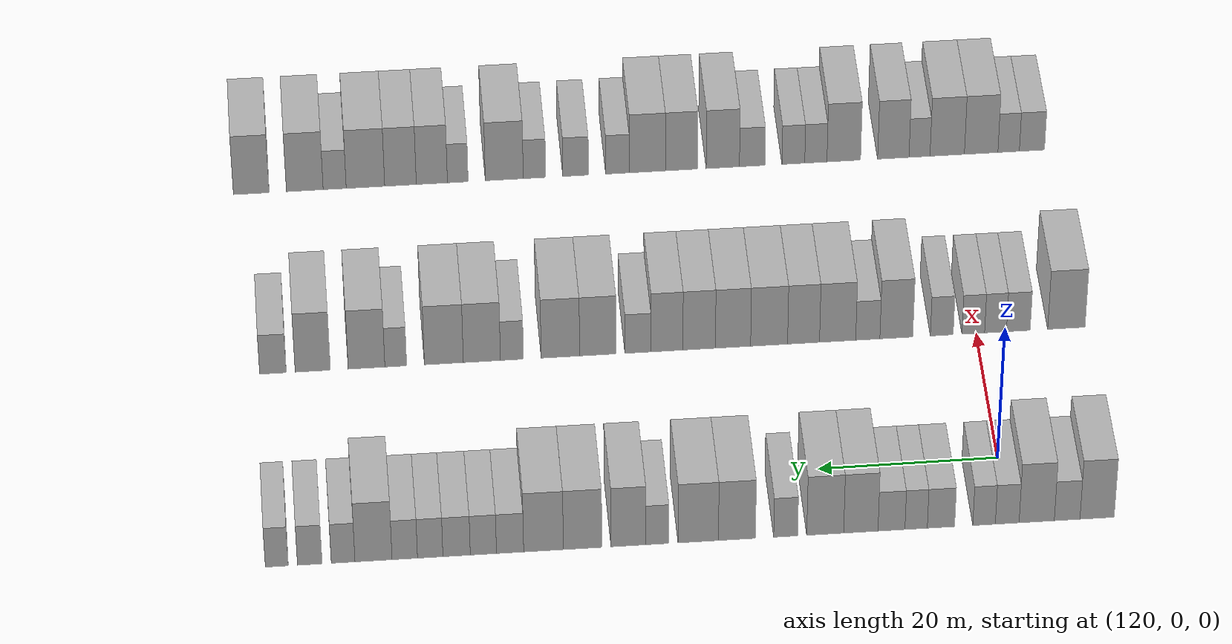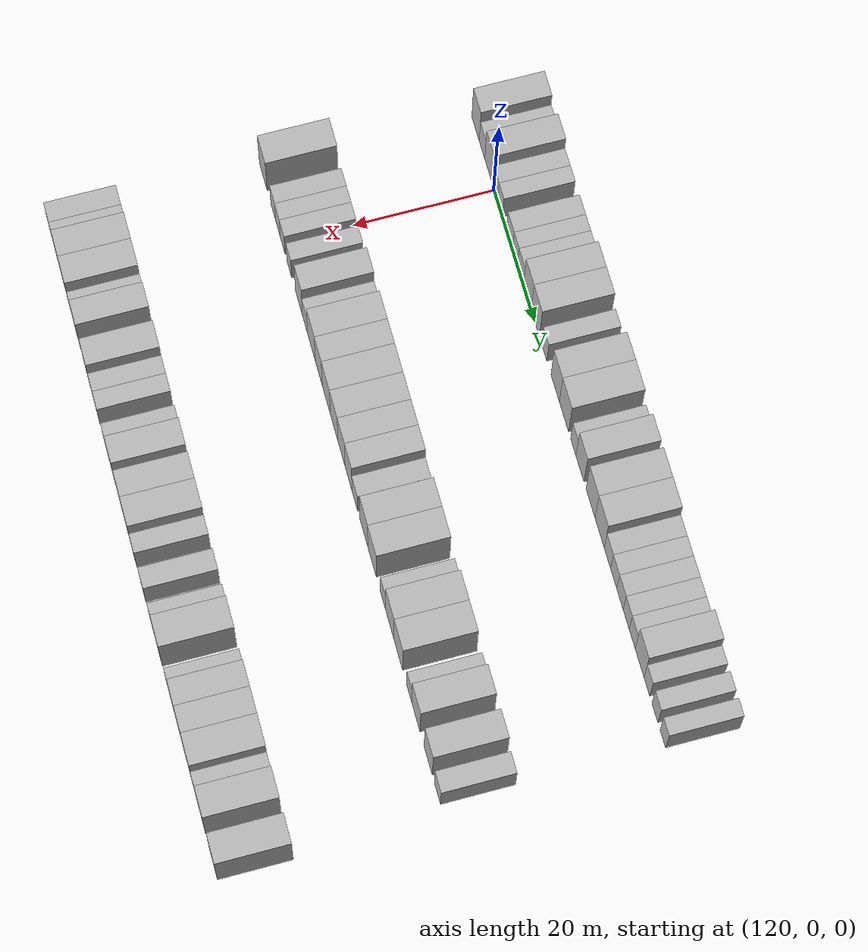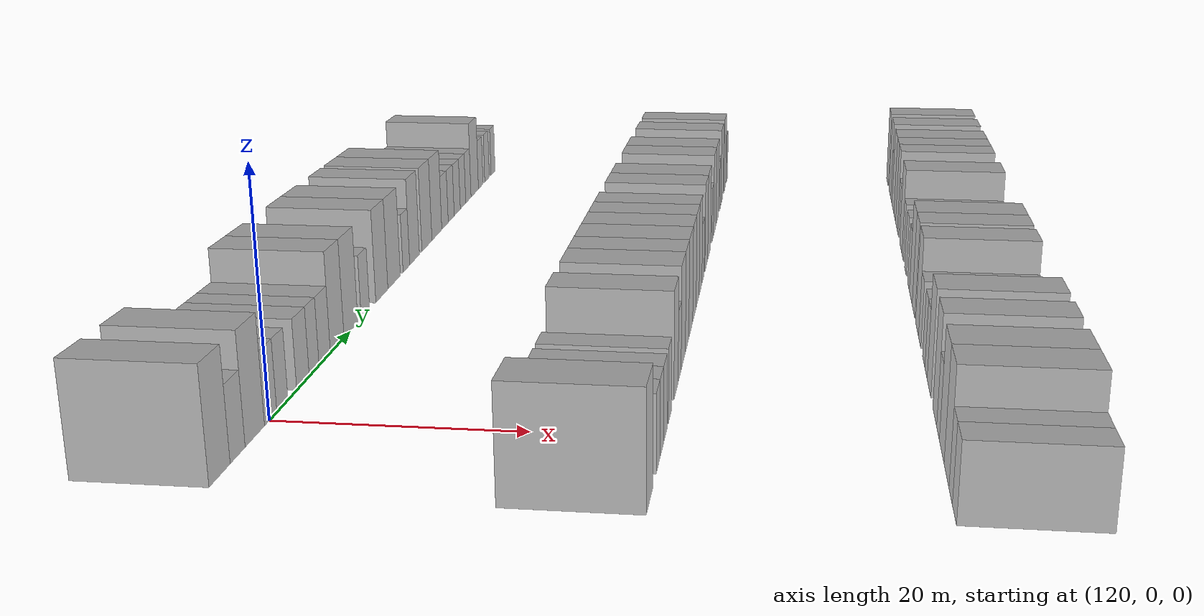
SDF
<sdf version="1.6">
 <world name="default">
  <model name="building_800">
   <static>1</static>
   <pose>115.0000 -9.6204 0 0.000000 0.000000 0.000000</pose>
   <link name="link">
    <pose>0 0 4.50 0 0 0</pose>
    <collision name="collision"><geometry><box><size>10.0000 3.7652 9.0000</size></box></geometry></collision>
    <visual name="visual">
     <cast_shadows>0</cast_shadows>
     <geometry><box><size>10.0000 3.7652 9.0000</size></box></geometry>
     <material>
      <script>
       <uri>model://HANNAS_wall/materials/scripts</uri>
       <uri>model://HANNAS_wall/materials/textures</uri>
       <name>vrc/HANNAS_wall</name>
      </script>
     </material>
    </visual>
   </link>
  </model>
  <model name="building_801">
   <static>1</static>
   <pose>115.0000 -6.3253 0 0.000000 0.000000 0.000000</pose>
   <link name="link">
    <pose>0 0 3.00 0 0 0</pose>
    <collision name="collision"><geometry><box><size>10.0000 2.8250 6.0000</size></box></geometry></collision>
    <visual name="visual">
     <cast_shadows>0</cast_shadows>
     <geometry><box><size>10.0000 2.8250 6.0000</size></box></geometry>
     <material>
      <script>
       <uri>model://HANNAS_wall/materials/scripts</uri>
       <uri>model://HANNAS_wall/materials/textures</uri>
       <name>vrc/HANNAS_wall</name>
      </script>
     </material>
    </visual>
   </link>
  </model>
  <model name="building_802">
   <static>1</static>
   <pose>115.0000 -2.9754 0 0.000000 0.000000 0.000000</pose>
   <link name="link">
    <pose>0 0 4.50 0 0 0</pose>
    <collision name="collision"><geometry><box><size>10.0000 3.8748 9.0000</size></box></geometry></collision>
    <visual name="visual">
     <cast_shadows>0</cast_shadows>
     <geometry><box><size>10.0000 3.8748 9.0000</size></box></geometry>
     <material>
      <script>
       <uri>model://HANNAS_wall/materials/scripts</uri>
       <uri>model://HANNAS_wall/materials/textures</uri>
       <name>vrc/HANNAS_wall</name>
      </script>
     </material>
    </visual>
   </link>
  </model>
  <model name="building_803">
   <static>1</static>
   <pose>115.0000 0.2673 0 0.000000 0.000000 0.000000</pose>
   <link name="link">
    <pose>0 0 3.00 0 0 0</pose>
    <collision name="collision"><geometry><box><size>10.0000 2.6106 6.0000</size></box></geometry></collision>
    <visual name="visual">
     <cast_shadows>0</cast_shadows>
     <geometry><box><size>10.0000 2.6106 6.0000</size></box></geometry>
     <material>
      <script>
       <uri>model://HANNAS_wall/materials/scripts</uri>
       <uri>model://HANNAS_wall/materials/textures</uri>
       <name>vrc/HANNAS_wall</name>
      </script>
     </material>
    </visual>
   </link>
  </model>
  <model name="building_804">
   <static>1</static>
   <pose>115.0000 2.8122 0 0.000000 0.000000 0.000000</pose>
   <link name="link">
    <pose>0 0 3.00 0 0 0</pose>
    <collision name="collision"><geometry><box><size>10.0000 2.4792 6.0000</size></box></geometry></collision>
    <visual name="visual">
     <cast_shadows>0</cast_shadows>
     <geometry><box><size>10.0000 2.4792 6.0000</size></box></geometry>
     <material>
      <script>
       <uri>model://HANNAS_wall/materials/scripts</uri>
       <uri>model://HANNAS_wall/materials/textures</uri>
       <name>vrc/HANNAS_wall</name>
      </script>
     </material>
    </visual>
   </link>
  </model>
  <model name="building_805">
   <static>1</static>
   <pose>115.0000 7.5514 0 0.000000 0.000000 0.000000</pose>
   <link name="link">
    <pose>0 0 3.00 0 0 0</pose>
    <collision name="collision"><geometry><box><size>10.0000 2.9992 6.0000</size></box></geometry></collision>
    <visual name="visual">
     <cast_shadows>0</cast_shadows>
     <geometry><box><size>10.0000 2.9992 6.0000</size></box></geometry>
     <material>
      <script>
       <uri>model://HANNAS_wall/materials/scripts</uri>
       <uri>model://HANNAS_wall/materials/textures</uri>
       <name>vrc/HANNAS_wall</name>
      </script>
     </material>
    </visual>
   </link>
  </model>
  <model name="building_806">
   <static>1</static>
   <pose>115.0000 10.2783 0 0.000000 0.000000 0.000000</pose>
   <link name="link">
    <pose>0 0 3.00 0 0 0</pose>
    <collision name="collision"><geometry><box><size>10.0000 2.4547 6.0000</size></box></geometry></collision>
    <visual name="visual">
     <cast_shadows>0</cast_shadows>
     <geometry><box><size>10.0000 2.4547 6.0000</size></box></geometry>
     <material>
      <script>
       <uri>model://HANNAS_wall/materials/scripts</uri>
       <uri>model://HANNAS_wall/materials/textures</uri>
       <name>vrc/HANNAS_wall</name>
      </script>
     </material>
    </visual>
   </link>
  </model>
  <model name="building_807">
   <static>1</static>
   <pose>115.0000 12.9824 0 0.000000 0.000000 0.000000</pose>
   <link name="link">
    <pose>0 0 3.00 0 0 0</pose>
    <collision name="collision"><geometry><box><size>10.0000 2.9535 6.0000</size></box></geometry></collision>
    <visual name="visual">
     <cast_shadows>0</cast_shadows>
     <geometry><box><size>10.0000 2.9535 6.0000</size></box></geometry>
     <material>
      <script>
       <uri>model://HANNAS_wall/materials/scripts</uri>
       <uri>model://HANNAS_wall/materials/textures</uri>
       <name>vrc/HANNAS_wall</name>
      </script>
     </material>
    </visual>
   </link>
  </model>
  <model name="building_808">
   <static>1</static>
   <pose>115.0000 16.3443 0 0.000000 0.000000 0.000000</pose>
   <link name="link">
    <pose>0 0 4.50 0 0 0</pose>
    <collision name="collision"><geometry><box><size>10.0000 3.7703 9.0000</size></box></geometry></collision>
    <visual name="visual">
     <cast_shadows>0</cast_shadows>
     <geometry><box><size>10.0000 3.7703 9.0000</size></box></geometry>
     <material>
      <script>
       <uri>model://HANNAS_wall/materials/scripts</uri>
       <uri>model://HANNAS_wall/materials/textures</uri>
       <name>vrc/HANNAS_wall</name>
      </script>
     </material>
    </visual>
   </link>
  </model>
  <model name="building_809">
   <static>1</static>
   <pose>115.0000 20.2515 0 0.000000 0.000000 0.000000</pose>
   <link name="link">
    <pose>0 0 4.50 0 0 0</pose>
    <collision name="collision"><geometry><box><size>10.0000 4.0441 9.0000</size></box></geometry></collision>
    <visual name="visual">
     <cast_shadows>0</cast_shadows>
     <geometry><box><size>10.0000 4.0441 9.0000</size></box></geometry>
     <material>
      <script>
       <uri>model://HANNAS_wall/materials/scripts</uri>
       <uri>model://HANNAS_wall/materials/textures</uri>
       <name>vrc/HANNAS_wall</name>
      </script>
     </material>
    </visual>
   </link>
  </model>
  <model name="building_810">
   <static>1</static>
   <pose>115.0000 24.5813 0 0.000000 0.000000 0.000000</pose>
   <link name="link">
    <pose>0 0 3.00 0 0 0</pose>
    <collision name="collision"><geometry><box><size>10.0000 2.6155 6.0000</size></box></geometry></collision>
    <visual name="visual">
     <cast_shadows>0</cast_shadows>
     <geometry><box><size>10.0000 2.6155 6.0000</size></box></geometry>
     <material>
      <script>
       <uri>model://HANNAS_wall/materials/scripts</uri>
       <uri>model://HANNAS_wall/materials/textures</uri>
       <name>vrc/HANNAS_wall</name>
      </script>
     </material>
    </visual>
   </link>
  </model>
  <model name="building_811">
   <static>1</static>
   <pose>115.0000 29.9097 0 0.000000 0.000000 0.000000</pose>
   <link name="link">
    <pose>0 0 4.50 0 0 0</pose>
    <collision name="collision"><geometry><box><size>10.0000 4.0414 9.0000</size></box></geometry></collision>
    <visual name="visual">
     <cast_shadows>0</cast_shadows>
     <geometry><box><size>10.0000 4.0414 9.0000</size></box></geometry>
     <material>
      <script>
       <uri>model://HANNAS_wall/materials/scripts</uri>
       <uri>model://HANNAS_wall/materials/textures</uri>
       <name>vrc/HANNAS_wall</name>
      </script>
     </material>
    </visual>
   </link>
  </model>
  <model name="building_812">
   <static>1</static>
   <pose>115.0000 34.1408 0 0.000000 0.000000 0.000000</pose>
   <link name="link">
    <pose>0 0 4.50 0 0 0</pose>
    <collision name="collision"><geometry><box><size>10.0000 4.4208 9.0000</size></box></geometry></collision>
    <visual name="visual">
     <cast_shadows>0</cast_shadows>
     <geometry><box><size>10.0000 4.4208 9.0000</size></box></geometry>
     <material>
      <script>
       <uri>model://HANNAS_wall/materials/scripts</uri>
       <uri>model://HANNAS_wall/materials/textures</uri>
       <name>vrc/HANNAS_wall</name>
      </script>
     </material>
    </visual>
   </link>
  </model>
  <model name="building_813">
   <static>1</static>
   <pose>115.0000 38.6051 0 0.000000 0.000000 0.000000</pose>
   <link name="link">
    <pose>0 0 3.00 0 0 0</pose>
    <collision name="collision"><geometry><box><size>10.0000 2.5077 6.0000</size></box></geometry></collision>
    <visual name="visual">
     <cast_shadows>0</cast_shadows>
     <geometry><box><size>10.0000 2.5077 6.0000</size></box></geometry>
     <material>
      <script>
       <uri>model://HANNAS_wall/materials/scripts</uri>
       <uri>model://HANNAS_wall/materials/textures</uri>
       <name>vrc/HANNAS_wall</name>
      </script>
     </material>
    </visual>
   </link>
  </model>
  <model name="building_814">
   <static>1</static>
   <pose>115.0000 41.7603 0 0.000000 0.000000 0.000000</pose>
   <link name="link">
    <pose>0 0 4.50 0 0 0</pose>
    <collision name="collision"><geometry><box><size>10.0000 3.8028 9.0000</size></box></geometry></collision>
    <visual name="visual">
     <cast_shadows>0</cast_shadows>
     <geometry><box><size>10.0000 3.8028 9.0000</size></box></geometry>
     <material>
      <script>
       <uri>model://HANNAS_wall/materials/scripts</uri>
       <uri>model://HANNAS_wall/materials/textures</uri>
       <name>vrc/HANNAS_wall</name>
      </script>
     </material>
    </visual>
   </link>
  </model>
  <model name="building_815">
   <static>1</static>
   <pose>115.0000 46.7596 0 0.000000 0.000000 0.000000</pose>
   <link name="link">
    <pose>0 0 4.50 0 0 0</pose>
    <collision name="collision"><geometry><box><size>10.0000 4.1958 9.0000</size></box></geometry></collision>
    <visual name="visual">
     <cast_shadows>0</cast_shadows>
     <geometry><box><size>10.0000 4.1958 9.0000</size></box></geometry>
     <material>
      <script>
       <uri>model://HANNAS_wall/materials/scripts</uri>
       <uri>model://HANNAS_wall/materials/textures</uri>
       <name>vrc/HANNAS_wall</name>
      </script>
     </material>
    </visual>
   </link>
  </model>
  <model name="building_816">
   <static>1</static>
   <pose>115.0000 51.0216 0 0.000000 0.000000 0.000000</pose>
   <link name="link">
    <pose>0 0 4.50 0 0 0</pose>
    <collision name="collision"><geometry><box><size>10.0000 4.3281 9.0000</size></box></geometry></collision>
    <visual name="visual">
     <cast_shadows>0</cast_shadows>
     <geometry><box><size>10.0000 4.3281 9.0000</size></box></geometry>
     <material>
      <script>
       <uri>model://HANNAS_wall/materials/scripts</uri>
       <uri>model://HANNAS_wall/materials/textures</uri>
       <name>vrc/HANNAS_wall</name>
      </script>
     </material>
    </visual>
   </link>
  </model>
  <model name="building_817">
   <static>1</static>
   <pose>115.0000 54.6673 0 0.000000 0.000000 0.000000</pose>
   <link name="link">
    <pose>0 0 3.00 0 0 0</pose>
    <collision name="collision"><geometry><box><size>10.0000 2.9633 6.0000</size></box></geometry></collision>
    <visual name="visual">
     <cast_shadows>0</cast_shadows>
     <geometry><box><size>10.0000 2.9633 6.0000</size></box></geometry>
     <material>
      <script>
       <uri>model://HANNAS_wall/materials/scripts</uri>
       <uri>model://HANNAS_wall/materials/textures</uri>
       <name>vrc/HANNAS_wall</name>
      </script>
     </material>
    </visual>
   </link>
  </model>
  <model name="building_818">
   <static>1</static>
   <pose>115.0000 57.5738 0 0.000000 0.000000 0.000000</pose>
   <link name="link">
    <pose>0 0 3.00 0 0 0</pose>
    <collision name="collision"><geometry><box><size>10.0000 2.8498 6.0000</size></box></geometry></collision>
    <visual name="visual">
     <cast_shadows>0</cast_shadows>
     <geometry><box><size>10.0000 2.8498 6.0000</size></box></geometry>
     <material>
      <script>
       <uri>model://HANNAS_wall/materials/scripts</uri>
       <uri>model://HANNAS_wall/materials/textures</uri>
       <name>vrc/HANNAS_wall</name>
      </script>
     </material>
    </visual>
   </link>
  </model>
  <model name="building_819">
   <static>1</static>
   <pose>115.0000 60.4878 0 0.000000 0.000000 0.000000</pose>
   <link name="link">
    <pose>0 0 3.00 0 0 0</pose>
    <collision name="collision"><geometry><box><size>10.0000 2.9781 6.0000</size></box></geometry></collision>
    <visual name="visual">
     <cast_shadows>0</cast_shadows>
     <geometry><box><size>10.0000 2.9781 6.0000</size></box></geometry>
     <material>
      <script>
       <uri>model://HANNAS_wall/materials/scripts</uri>
       <uri>model://HANNAS_wall/materials/textures</uri>
       <name>vrc/HANNAS_wall</name>
      </script>
     </material>
    </visual>
   </link>
  </model>
  <model name="building_820">
   <static>1</static>
   <pose>115.0000 63.3587 0 0.000000 0.000000 0.000000</pose>
   <link name="link">
    <pose>0 0 3.00 0 0 0</pose>
    <collision name="collision"><geometry><box><size>10.0000 2.7637 6.0000</size></box></geometry></collision>
    <visual name="visual">
     <cast_shadows>0</cast_shadows>
     <geometry><box><size>10.0000 2.7637 6.0000</size></box></geometry>
     <material>
      <script>
       <uri>model://HANNAS_wall/materials/scripts</uri>
       <uri>model://HANNAS_wall/materials/textures</uri>
       <name>vrc/HANNAS_wall</name>
      </script>
     </material>
    </visual>
   </link>
  </model>
  <model name="building_821">
   <static>1</static>
   <pose>115.0000 66.1230 0 0.000000 0.000000 0.000000</pose>
   <link name="link">
    <pose>0 0 3.00 0 0 0</pose>
    <collision name="collision"><geometry><box><size>10.0000 2.7650 6.0000</size></box></geometry></collision>
    <visual name="visual">
     <cast_shadows>0</cast_shadows>
     <geometry><box><size>10.0000 2.7650 6.0000</size></box></geometry>
     <material>
      <script>
       <uri>model://HANNAS_wall/materials/scripts</uri>
       <uri>model://HANNAS_wall/materials/textures</uri>
       <name>vrc/HANNAS_wall</name>
      </script>
     </material>
    </visual>
   </link>
  </model>
  <model name="building_822">
   <static>1</static>
   <pose>115.0000 69.5182 0 0.000000 0.000000 0.000000</pose>
   <link name="link">
    <pose>0 0 4.50 0 0 0</pose>
    <collision name="collision"><geometry><box><size>10.0000 4.0255 9.0000</size></box></geometry></collision>
    <visual name="visual">
     <cast_shadows>0</cast_shadows>
     <geometry><box><size>10.0000 4.0255 9.0000</size></box></geometry>
     <material>
      <script>
       <uri>model://HANNAS_wall/materials/scripts</uri>
       <uri>model://HANNAS_wall/materials/textures</uri>
       <name>vrc/HANNAS_wall</name>
      </script>
     </material>
    </visual>
   </link>
  </model>
  <model name="building_823">
   <static>1</static>
   <pose>115.0000 72.8144 0 0.000000 0.000000 0.000000</pose>
   <link name="link">
    <pose>0 0 3.00 0 0 0</pose>
    <collision name="collision"><geometry><box><size>10.0000 2.5668 6.0000</size></box></geometry></collision>
    <visual name="visual">
     <cast_shadows>0</cast_shadows>
     <geometry><box><size>10.0000 2.5668 6.0000</size></box></geometry>
     <material>
      <script>
       <uri>model://HANNAS_wall/materials/scripts</uri>
       <uri>model://HANNAS_wall/materials/textures</uri>
       <name>vrc/HANNAS_wall</name>
      </script>
     </material>
    </visual>
   </link>
  </model>
  <model name="building_824">
   <static>1</static>
   <pose>115.0000 76.4316 0 0.000000 0.000000 0.000000</pose>
   <link name="link">
    <pose>0 0 3.00 0 0 0</pose>
    <collision name="collision"><geometry><box><size>10.0000 2.6676 6.0000</size></box></geometry></collision>
    <visual name="visual">
     <cast_shadows>0</cast_shadows>
     <geometry><box><size>10.0000 2.6676 6.0000</size></box></geometry>
     <material>
      <script>
       <uri>model://HANNAS_wall/materials/scripts</uri>
       <uri>model://HANNAS_wall/materials/textures</uri>
       <name>vrc/HANNAS_wall</name>
      </script>
     </material>
    </visual>
   </link>
  </model>
  <model name="building_825">
   <static>1</static>
   <pose>115.0000 80.0039 0 0.000000 0.000000 0.000000</pose>
   <link name="link">
    <pose>0 0 3.00 0 0 0</pose>
    <collision name="collision"><geometry><box><size>10.0000 2.4771 6.0000</size></box></geometry></collision>
    <visual name="visual">
     <cast_shadows>0</cast_shadows>
     <geometry><box><size>10.0000 2.4771 6.0000</size></box></geometry>
     <material>
      <script>
       <uri>model://HANNAS_wall/materials/scripts</uri>
       <uri>model://HANNAS_wall/materials/textures</uri>
       <name>vrc/HANNAS_wall</name>
      </script>
     </material>
    </visual>
   </link>
  </model>
  <model name="building_1036">
   <static>1</static>
   <pose>145.0000 -10.2157 0 0.000000 0.000000 0.000000</pose>
   <link name="link">
    <pose>0 0 4.50 0 0 0</pose>
    <collision name="collision"><geometry><box><size>10.0000 4.2425 9.0000</size></box></geometry></collision>
    <visual name="visual">
     <cast_shadows>0</cast_shadows>
     <geometry><box><size>10.0000 4.2425 9.0000</size></box></geometry>
     <material>
      <script>
       <uri>model://HANNAS_wall/materials/scripts</uri>
       <uri>model://HANNAS_wall/materials/textures</uri>
       <name>vrc/HANNAS_wall</name>
      </script>
     </material>
    </visual>
   </link>
  </model>
  <model name="building_1037">
   <static>1</static>
   <pose>145.0000 -4.7481 0 0.000000 0.000000 0.000000</pose>
   <link name="link">
    <pose>0 0 3.00 0 0 0</pose>
    <collision name="collision"><geometry><box><size>10.0000 2.6929 6.0000</size></box></geometry></collision>
    <visual name="visual">
     <cast_shadows>0</cast_shadows>
     <geometry><box><size>10.0000 2.6929 6.0000</size></box></geometry>
     <material>
      <script>
       <uri>model://HANNAS_wall/materials/scripts</uri>
       <uri>model://HANNAS_wall/materials/textures</uri>
       <name>vrc/HANNAS_wall</name>
      </script>
     </material>
    </visual>
   </link>
  </model>
  <model name="building_1038">
   <static>1</static>
   <pose>145.0000 -2.1588 0 0.000000 0.000000 0.000000</pose>
   <link name="link">
    <pose>0 0 3.00 0 0 0</pose>
    <collision name="collision"><geometry><box><size>10.0000 2.4857 6.0000</size></box></geometry></collision>
    <visual name="visual">
     <cast_shadows>0</cast_shadows>
     <geometry><box><size>10.0000 2.4857 6.0000</size></box></geometry>
     <material>
      <script>
       <uri>model://HANNAS_wall/materials/scripts</uri>
       <uri>model://HANNAS_wall/materials/textures</uri>
       <name>vrc/HANNAS_wall</name>
      </script>
     </material>
    </visual>
   </link>
  </model>
  <model name="building_1039">
   <static>1</static>
   <pose>145.0000 0.3706 0 0.000000 0.000000 0.000000</pose>
   <link name="link">
    <pose>0 0 3.00 0 0 0</pose>
    <collision name="collision"><geometry><box><size>10.0000 2.5731 6.0000</size></box></geometry></collision>
    <visual name="visual">
     <cast_shadows>0</cast_shadows>
     <geometry><box><size>10.0000 2.5731 6.0000</size></box></geometry>
     <material>
      <script>
       <uri>model://HANNAS_wall/materials/scripts</uri>
       <uri>model://HANNAS_wall/materials/textures</uri>
       <name>vrc/HANNAS_wall</name>
      </script>
     </material>
    </visual>
   </link>
  </model>
  <model name="building_1040">
   <static>1</static>
   <pose>145.0000 3.9520 0 0.000000 0.000000 0.000000</pose>
   <link name="link">
    <pose>0 0 3.00 0 0 0</pose>
    <collision name="collision"><geometry><box><size>10.0000 2.5896 6.0000</size></box></geometry></collision>
    <visual name="visual">
     <cast_shadows>0</cast_shadows>
     <geometry><box><size>10.0000 2.5896 6.0000</size></box></geometry>
     <material>
      <script>
       <uri>model://HANNAS_wall/materials/scripts</uri>
       <uri>model://HANNAS_wall/materials/textures</uri>
       <name>vrc/HANNAS_wall</name>
      </script>
     </material>
    </visual>
   </link>
  </model>
  <model name="building_1041">
   <static>1</static>
   <pose>145.0000 9.1105 0 0.000000 0.000000 0.000000</pose>
   <link name="link">
    <pose>0 0 4.50 0 0 0</pose>
    <collision name="collision"><geometry><box><size>10.0000 3.7273 9.0000</size></box></geometry></collision>
    <visual name="visual">
     <cast_shadows>0</cast_shadows>
     <geometry><box><size>10.0000 3.7273 9.0000</size></box></geometry>
     <material>
      <script>
       <uri>model://HANNAS_wall/materials/scripts</uri>
       <uri>model://HANNAS_wall/materials/textures</uri>
       <name>vrc/HANNAS_wall</name>
      </script>
     </material>
    </visual>
   </link>
  </model>
  <model name="building_1042">
   <static>1</static>
   <pose>145.0000 12.3460 0 0.000000 0.000000 0.000000</pose>
   <link name="link">
    <pose>0 0 3.00 0 0 0</pose>
    <collision name="collision"><geometry><box><size>10.0000 2.7438 6.0000</size></box></geometry></collision>
    <visual name="visual">
     <cast_shadows>0</cast_shadows>
     <geometry><box><size>10.0000 2.7438 6.0000</size></box></geometry>
     <material>
      <script>
       <uri>model://HANNAS_wall/materials/scripts</uri>
       <uri>model://HANNAS_wall/materials/textures</uri>
       <name>vrc/HANNAS_wall</name>
      </script>
     </material>
    </visual>
   </link>
  </model>
  <model name="building_1043">
   <static>1</static>
   <pose>145.0000 15.7672 0 0.000000 0.000000 0.000000</pose>
   <link name="link">
    <pose>0 0 4.50 0 0 0</pose>
    <collision name="collision"><geometry><box><size>10.0000 4.0986 9.0000</size></box></geometry></collision>
    <visual name="visual">
     <cast_shadows>0</cast_shadows>
     <geometry><box><size>10.0000 4.0986 9.0000</size></box></geometry>
     <material>
      <script>
       <uri>model://HANNAS_wall/materials/scripts</uri>
       <uri>model://HANNAS_wall/materials/textures</uri>
       <name>vrc/HANNAS_wall</name>
      </script>
     </material>
    </visual>
   </link>
  </model>
  <model name="building_1044">
   <static>1</static>
   <pose>145.0000 19.6259 0 0.000000 0.000000 0.000000</pose>
   <link name="link">
    <pose>0 0 4.50 0 0 0</pose>
    <collision name="collision"><geometry><box><size>10.0000 3.6188 9.0000</size></box></geometry></collision>
    <visual name="visual">
     <cast_shadows>0</cast_shadows>
     <geometry><box><size>10.0000 3.6188 9.0000</size></box></geometry>
     <material>
      <script>
       <uri>model://HANNAS_wall/materials/scripts</uri>
       <uri>model://HANNAS_wall/materials/textures</uri>
       <name>vrc/HANNAS_wall</name>
      </script>
     </material>
    </visual>
   </link>
  </model>
  <model name="building_1045">
   <static>1</static>
   <pose>145.0000 23.5263 0 0.000000 0.000000 0.000000</pose>
   <link name="link">
    <pose>0 0 4.50 0 0 0</pose>
    <collision name="collision"><geometry><box><size>10.0000 4.1819 9.0000</size></box></geometry></collision>
    <visual name="visual">
     <cast_shadows>0</cast_shadows>
     <geometry><box><size>10.0000 4.1819 9.0000</size></box></geometry>
     <material>
      <script>
       <uri>model://HANNAS_wall/materials/scripts</uri>
       <uri>model://HANNAS_wall/materials/textures</uri>
       <name>vrc/HANNAS_wall</name>
      </script>
     </material>
    </visual>
   </link>
  </model>
  <model name="building_1046">
   <static>1</static>
   <pose>145.0000 27.6046 0 0.000000 0.000000 0.000000</pose>
   <link name="link">
    <pose>0 0 4.50 0 0 0</pose>
    <collision name="collision"><geometry><box><size>10.0000 3.9747 9.0000</size></box></geometry></collision>
    <visual name="visual">
     <cast_shadows>0</cast_shadows>
     <geometry><box><size>10.0000 3.9747 9.0000</size></box></geometry>
     <material>
      <script>
       <uri>model://HANNAS_wall/materials/scripts</uri>
       <uri>model://HANNAS_wall/materials/textures</uri>
       <name>vrc/HANNAS_wall</name>
      </script>
     </material>
    </visual>
   </link>
  </model>
  <model name="building_1047">
   <static>1</static>
   <pose>145.0000 31.4269 0 0.000000 0.000000 0.000000</pose>
   <link name="link">
    <pose>0 0 4.50 0 0 0</pose>
    <collision name="collision"><geometry><box><size>10.0000 3.6699 9.0000</size></box></geometry></collision>
    <visual name="visual">
     <cast_shadows>0</cast_shadows>
     <geometry><box><size>10.0000 3.6699 9.0000</size></box></geometry>
     <material>
      <script>
       <uri>model://HANNAS_wall/materials/scripts</uri>
       <uri>model://HANNAS_wall/materials/textures</uri>
       <name>vrc/HANNAS_wall</name>
      </script>
     </material>
    </visual>
   </link>
  </model>
  <model name="building_1048">
   <static>1</static>
   <pose>145.0000 35.0677 0 0.000000 0.000000 0.000000</pose>
   <link name="link">
    <pose>0 0 4.50 0 0 0</pose>
    <collision name="collision"><geometry><box><size>10.0000 3.6118 9.0000</size></box></geometry></collision>
    <visual name="visual">
     <cast_shadows>0</cast_shadows>
     <geometry><box><size>10.0000 3.6118 9.0000</size></box></geometry>
     <material>
      <script>
       <uri>model://HANNAS_wall/materials/scripts</uri>
       <uri>model://HANNAS_wall/materials/textures</uri>
       <name>vrc/HANNAS_wall</name>
      </script>
     </material>
    </visual>
   </link>
  </model>
  <model name="building_1049">
   <static>1</static>
   <pose>145.0000 38.3429 0 0.000000 0.000000 0.000000</pose>
   <link name="link">
    <pose>0 0 3.00 0 0 0</pose>
    <collision name="collision"><geometry><box><size>10.0000 2.9385 6.0000</size></box></geometry></collision>
    <visual name="visual">
     <cast_shadows>0</cast_shadows>
     <geometry><box><size>10.0000 2.9385 6.0000</size></box></geometry>
     <material>
      <script>
       <uri>model://HANNAS_wall/materials/scripts</uri>
       <uri>model://HANNAS_wall/materials/textures</uri>
       <name>vrc/HANNAS_wall</name>
      </script>
     </material>
    </visual>
   </link>
  </model>
  <model name="building_1050">
   <static>1</static>
   <pose>145.0000 42.8645 0 0.000000 0.000000 0.000000</pose>
   <link name="link">
    <pose>0 0 4.50 0 0 0</pose>
    <collision name="collision"><geometry><box><size>10.0000 4.1048 9.0000</size></box></geometry></collision>
    <visual name="visual">
     <cast_shadows>0</cast_shadows>
     <geometry><box><size>10.0000 4.1048 9.0000</size></box></geometry>
     <material>
      <script>
       <uri>model://HANNAS_wall/materials/scripts</uri>
       <uri>model://HANNAS_wall/materials/textures</uri>
       <name>vrc/HANNAS_wall</name>
      </script>
     </material>
    </visual>
   </link>
  </model>
  <model name="building_1051">
   <static>1</static>
   <pose>145.0000 47.0874 0 0.000000 0.000000 0.000000</pose>
   <link name="link">
    <pose>0 0 4.50 0 0 0</pose>
    <collision name="collision"><geometry><box><size>10.0000 4.3409 9.0000</size></box></geometry></collision>
    <visual name="visual">
     <cast_shadows>0</cast_shadows>
     <geometry><box><size>10.0000 4.3409 9.0000</size></box></geometry>
     <material>
      <script>
       <uri>model://HANNAS_wall/materials/scripts</uri>
       <uri>model://HANNAS_wall/materials/textures</uri>
       <name>vrc/HANNAS_wall</name>
      </script>
     </material>
    </visual>
   </link>
  </model>
  <model name="building_1052">
   <static>1</static>
   <pose>145.0000 52.5514 0 0.000000 0.000000 0.000000</pose>
   <link name="link">
    <pose>0 0 3.00 0 0 0</pose>
    <collision name="collision"><geometry><box><size>10.0000 2.5871 6.0000</size></box></geometry></collision>
    <visual name="visual">
     <cast_shadows>0</cast_shadows>
     <geometry><box><size>10.0000 2.5871 6.0000</size></box></geometry>
     <material>
      <script>
       <uri>model://HANNAS_wall/materials/scripts</uri>
       <uri>model://HANNAS_wall/materials/textures</uri>
       <name>vrc/HANNAS_wall</name>
      </script>
     </material>
    </visual>
   </link>
  </model>
  <model name="building_1053">
   <static>1</static>
   <pose>145.0000 55.9327 0 0.000000 0.000000 0.000000</pose>
   <link name="link">
    <pose>0 0 4.50 0 0 0</pose>
    <collision name="collision"><geometry><box><size>10.0000 4.1753 9.0000</size></box></geometry></collision>
    <visual name="visual">
     <cast_shadows>0</cast_shadows>
     <geometry><box><size>10.0000 4.1753 9.0000</size></box></geometry>
     <material>
      <script>
       <uri>model://HANNAS_wall/materials/scripts</uri>
       <uri>model://HANNAS_wall/materials/textures</uri>
       <name>vrc/HANNAS_wall</name>
      </script>
     </material>
    </visual>
   </link>
  </model>
  <model name="building_1054">
   <static>1</static>
   <pose>145.0000 60.2094 0 0.000000 0.000000 0.000000</pose>
   <link name="link">
    <pose>0 0 4.50 0 0 0</pose>
    <collision name="collision"><geometry><box><size>10.0000 4.3781 9.0000</size></box></geometry></collision>
    <visual name="visual">
     <cast_shadows>0</cast_shadows>
     <geometry><box><size>10.0000 4.3781 9.0000</size></box></geometry>
     <material>
      <script>
       <uri>model://HANNAS_wall/materials/scripts</uri>
       <uri>model://HANNAS_wall/materials/textures</uri>
       <name>vrc/HANNAS_wall</name>
      </script>
     </material>
    </visual>
   </link>
  </model>
  <model name="building_1055">
   <static>1</static>
   <pose>145.0000 65.6194 0 0.000000 0.000000 0.000000</pose>
   <link name="link">
    <pose>0 0 3.00 0 0 0</pose>
    <collision name="collision"><geometry><box><size>10.0000 2.4419 6.0000</size></box></geometry></collision>
    <visual name="visual">
     <cast_shadows>0</cast_shadows>
     <geometry><box><size>10.0000 2.4419 6.0000</size></box></geometry>
     <material>
      <script>
       <uri>model://HANNAS_wall/materials/scripts</uri>
       <uri>model://HANNAS_wall/materials/textures</uri>
       <name>vrc/HANNAS_wall</name>
      </script>
     </material>
    </visual>
   </link>
  </model>
  <model name="building_1056">
   <static>1</static>
   <pose>145.0000 68.8976 0 0.000000 0.000000 0.000000</pose>
   <link name="link">
    <pose>0 0 4.50 0 0 0</pose>
    <collision name="collision"><geometry><box><size>10.0000 4.1145 9.0000</size></box></geometry></collision>
    <visual name="visual">
     <cast_shadows>0</cast_shadows>
     <geometry><box><size>10.0000 4.1145 9.0000</size></box></geometry>
     <material>
      <script>
       <uri>model://HANNAS_wall/materials/scripts</uri>
       <uri>model://HANNAS_wall/materials/textures</uri>
       <name>vrc/HANNAS_wall</name>
      </script>
     </material>
    </visual>
   </link>
  </model>
  <model name="building_1057">
   <static>1</static>
   <pose>145.0000 74.9297 0 0.000000 0.000000 0.000000</pose>
   <link name="link">
    <pose>0 0 4.50 0 0 0</pose>
    <collision name="collision"><geometry><box><size>10.0000 3.9498 9.0000</size></box></geometry></collision>
    <visual name="visual">
     <cast_shadows>0</cast_shadows>
     <geometry><box><size>10.0000 3.9498 9.0000</size></box></geometry>
     <material>
      <script>
       <uri>model://HANNAS_wall/materials/scripts</uri>
       <uri>model://HANNAS_wall/materials/textures</uri>
       <name>vrc/HANNAS_wall</name>
      </script>
     </material>
    </visual>
   </link>
  </model>
  <model name="building_1058">
   <static>1</static>
   <pose>145.0000 79.3916 0 0.000000 0.000000 0.000000</pose>
   <link name="link">
    <pose>0 0 3.00 0 0 0</pose>
    <collision name="collision"><geometry><box><size>10.0000 2.9742 6.0000</size></box></geometry></collision>
    <visual name="visual">
     <cast_shadows>0</cast_shadows>
     <geometry><box><size>10.0000 2.9742 6.0000</size></box></geometry>
     <material>
      <script>
       <uri>model://HANNAS_wall/materials/scripts</uri>
       <uri>model://HANNAS_wall/materials/textures</uri>
       <name>vrc/HANNAS_wall</name>
      </script>
     </material>
    </visual>
   </link>
  </model>
  <model name="building_1266">
   <static>1</static>
   <pose>175.0000 -10.1459 0 0.000000 0.000000 0.000000</pose>
   <link name="link">
    <pose>0 0 3.00 0 0 0</pose>
    <collision name="collision"><geometry><box><size>10.0000 2.9497 6.0000</size></box></geometry></collision>
    <visual name="visual">
     <cast_shadows>0</cast_shadows>
     <geometry><box><size>10.0000 2.9497 6.0000</size></box></geometry>
     <material>
      <script>
       <uri>model://HANNAS_wall/materials/scripts</uri>
       <uri>model://HANNAS_wall/materials/textures</uri>
       <name>vrc/HANNAS_wall</name>
      </script>
     </material>
    </visual>
   </link>
  </model>
  <model name="building_1267">
   <static>1</static>
   <pose>175.0000 -7.4106 0 0.000000 0.000000 0.000000</pose>
   <link name="link">
    <pose>0 0 3.00 0 0 0</pose>
    <collision name="collision"><geometry><box><size>10.0000 2.5210 6.0000</size></box></geometry></collision>
    <visual name="visual">
     <cast_shadows>0</cast_shadows>
     <geometry><box><size>10.0000 2.5210 6.0000</size></box></geometry>
     <material>
      <script>
       <uri>model://HANNAS_wall/materials/scripts</uri>
       <uri>model://HANNAS_wall/materials/textures</uri>
       <name>vrc/HANNAS_wall</name>
      </script>
     </material>
    </visual>
   </link>
  </model>
  <model name="building_1268">
   <static>1</static>
   <pose>175.0000 -4.1836 0 0.000000 0.000000 0.000000</pose>
   <link name="link">
    <pose>0 0 4.50 0 0 0</pose>
    <collision name="collision"><geometry><box><size>10.0000 3.9329 9.0000</size></box></geometry></collision>
    <visual name="visual">
     <cast_shadows>0</cast_shadows>
     <geometry><box><size>10.0000 3.9329 9.0000</size></box></geometry>
     <material>
      <script>
       <uri>model://HANNAS_wall/materials/scripts</uri>
       <uri>model://HANNAS_wall/materials/textures</uri>
       <name>vrc/HANNAS_wall</name>
      </script>
     </material>
    </visual>
   </link>
  </model>
  <model name="building_1269">
   <static>1</static>
   <pose>175.0000 -0.1991 0 0.000000 0.000000 0.000000</pose>
   <link name="link">
    <pose>0 0 4.50 0 0 0</pose>
    <collision name="collision"><geometry><box><size>10.0000 4.0362 9.0000</size></box></geometry></collision>
    <visual name="visual">
     <cast_shadows>0</cast_shadows>
     <geometry><box><size>10.0000 4.0362 9.0000</size></box></geometry>
     <material>
      <script>
       <uri>model://HANNAS_wall/materials/scripts</uri>
       <uri>model://HANNAS_wall/materials/textures</uri>
       <name>vrc/HANNAS_wall</name>
      </script>
     </material>
    </visual>
   </link>
  </model>
  <model name="building_1270">
   <static>1</static>
   <pose>175.0000 3.0519 0 0.000000 0.000000 0.000000</pose>
   <link name="link">
    <pose>0 0 3.00 0 0 0</pose>
    <collision name="collision"><geometry><box><size>10.0000 2.4659 6.0000</size></box></geometry></collision>
    <visual name="visual">
     <cast_shadows>0</cast_shadows>
     <geometry><box><size>10.0000 2.4659 6.0000</size></box></geometry>
     <material>
      <script>
       <uri>model://HANNAS_wall/materials/scripts</uri>
       <uri>model://HANNAS_wall/materials/textures</uri>
       <name>vrc/HANNAS_wall</name>
      </script>
     </material>
    </visual>
   </link>
  </model>
  <model name="building_1271">
   <static>1</static>
   <pose>175.0000 6.1228 0 0.000000 0.000000 0.000000</pose>
   <link name="link">
    <pose>0 0 4.50 0 0 0</pose>
    <collision name="collision"><geometry><box><size>10.0000 3.6759 9.0000</size></box></geometry></collision>
    <visual name="visual">
     <cast_shadows>0</cast_shadows>
     <geometry><box><size>10.0000 3.6759 9.0000</size></box></geometry>
     <material>
      <script>
       <uri>model://HANNAS_wall/materials/scripts</uri>
       <uri>model://HANNAS_wall/materials/textures</uri>
       <name>vrc/HANNAS_wall</name>
      </script>
     </material>
    </visual>
   </link>
  </model>
  <model name="building_1272">
   <static>1</static>
   <pose>175.0000 11.9276 0 0.000000 0.000000 0.000000</pose>
   <link name="link">
    <pose>0 0 4.50 0 0 0</pose>
    <collision name="collision"><geometry><box><size>10.0000 3.9336 9.0000</size></box></geometry></collision>
    <visual name="visual">
     <cast_shadows>0</cast_shadows>
     <geometry><box><size>10.0000 3.9336 9.0000</size></box></geometry>
     <material>
      <script>
       <uri>model://HANNAS_wall/materials/scripts</uri>
       <uri>model://HANNAS_wall/materials/textures</uri>
       <name>vrc/HANNAS_wall</name>
      </script>
     </material>
    </visual>
   </link>
  </model>
  <model name="building_1273">
   <static>1</static>
   <pose>175.0000 15.1921 0 0.000000 0.000000 0.000000</pose>
   <link name="link">
    <pose>0 0 3.00 0 0 0</pose>
    <collision name="collision"><geometry><box><size>10.0000 2.5954 6.0000</size></box></geometry></collision>
    <visual name="visual">
     <cast_shadows>0</cast_shadows>
     <geometry><box><size>10.0000 2.5954 6.0000</size></box></geometry>
     <material>
      <script>
       <uri>model://HANNAS_wall/materials/scripts</uri>
       <uri>model://HANNAS_wall/materials/textures</uri>
       <name>vrc/HANNAS_wall</name>
      </script>
     </material>
    </visual>
   </link>
  </model>
  <model name="building_1274">
   <static>1</static>
   <pose>175.0000 17.8208 0 0.000000 0.000000 0.000000</pose>
   <link name="link">
    <pose>0 0 3.00 0 0 0</pose>
    <collision name="collision"><geometry><box><size>10.0000 2.6622 6.0000</size></box></geometry></collision>
    <visual name="visual">
     <cast_shadows>0</cast_shadows>
     <geometry><box><size>10.0000 2.6622 6.0000</size></box></geometry>
     <material>
      <script>
       <uri>model://HANNAS_wall/materials/scripts</uri>
       <uri>model://HANNAS_wall/materials/textures</uri>
       <name>vrc/HANNAS_wall</name>
      </script>
     </material>
    </visual>
   </link>
  </model>
  <model name="building_1275">
   <static>1</static>
   <pose>175.0000 22.6377 0 0.000000 0.000000 0.000000</pose>
   <link name="link">
    <pose>0 0 3.00 0 0 0</pose>
    <collision name="collision"><geometry><box><size>10.0000 2.9715 6.0000</size></box></geometry></collision>
    <visual name="visual">
     <cast_shadows>0</cast_shadows>
     <geometry><box><size>10.0000 2.9715 6.0000</size></box></geometry>
     <material>
      <script>
       <uri>model://HANNAS_wall/materials/scripts</uri>
       <uri>model://HANNAS_wall/materials/textures</uri>
       <name>vrc/HANNAS_wall</name>
      </script>
     </material>
    </visual>
   </link>
  </model>
  <model name="building_1276">
   <static>1</static>
   <pose>175.0000 26.0659 0 0.000000 0.000000 0.000000</pose>
   <link name="link">
    <pose>0 0 4.50 0 0 0</pose>
    <collision name="collision"><geometry><box><size>10.0000 3.8850 9.0000</size></box></geometry></collision>
    <visual name="visual">
     <cast_shadows>0</cast_shadows>
     <geometry><box><size>10.0000 3.8850 9.0000</size></box></geometry>
     <material>
      <script>
       <uri>model://HANNAS_wall/materials/scripts</uri>
       <uri>model://HANNAS_wall/materials/textures</uri>
       <name>vrc/HANNAS_wall</name>
      </script>
     </material>
    </visual>
   </link>
  </model>
  <model name="building_1277">
   <static>1</static>
   <pose>175.0000 30.8883 0 0.000000 0.000000 0.000000</pose>
   <link name="link">
    <pose>0 0 4.50 0 0 0</pose>
    <collision name="collision"><geometry><box><size>10.0000 3.7598 9.0000</size></box></geometry></collision>
    <visual name="visual">
     <cast_shadows>0</cast_shadows>
     <geometry><box><size>10.0000 3.7598 9.0000</size></box></geometry>
     <material>
      <script>
       <uri>model://HANNAS_wall/materials/scripts</uri>
       <uri>model://HANNAS_wall/materials/textures</uri>
       <name>vrc/HANNAS_wall</name>
      </script>
     </material>
    </visual>
   </link>
  </model>
  <model name="building_1278">
   <static>1</static>
   <pose>175.0000 34.8705 0 0.000000 0.000000 0.000000</pose>
   <link name="link">
    <pose>0 0 4.50 0 0 0</pose>
    <collision name="collision"><geometry><box><size>10.0000 4.2045 9.0000</size></box></geometry></collision>
    <visual name="visual">
     <cast_shadows>0</cast_shadows>
     <geometry><box><size>10.0000 4.2045 9.0000</size></box></geometry>
     <material>
      <script>
       <uri>model://HANNAS_wall/materials/scripts</uri>
       <uri>model://HANNAS_wall/materials/textures</uri>
       <name>vrc/HANNAS_wall</name>
      </script>
     </material>
    </visual>
   </link>
  </model>
  <model name="building_1279">
   <static>1</static>
   <pose>175.0000 38.3517 0 0.000000 0.000000 0.000000</pose>
   <link name="link">
    <pose>0 0 3.00 0 0 0</pose>
    <collision name="collision"><geometry><box><size>10.0000 2.7581 6.0000</size></box></geometry></collision>
    <visual name="visual">
     <cast_shadows>0</cast_shadows>
     <geometry><box><size>10.0000 2.7581 6.0000</size></box></geometry>
     <material>
      <script>
       <uri>model://HANNAS_wall/materials/scripts</uri>
       <uri>model://HANNAS_wall/materials/textures</uri>
       <name>vrc/HANNAS_wall</name>
      </script>
     </material>
    </visual>
   </link>
  </model>
  <model name="building_1280">
   <static>1</static>
   <pose>175.0000 43.2233 0 0.000000 0.000000 0.000000</pose>
   <link name="link">
    <pose>0 0 3.00 0 0 0</pose>
    <collision name="collision"><geometry><box><size>10.0000 2.9851 6.0000</size></box></geometry></collision>
    <visual name="visual">
     <cast_shadows>0</cast_shadows>
     <geometry><box><size>10.0000 2.9851 6.0000</size></box></geometry>
     <material>
      <script>
       <uri>model://HANNAS_wall/materials/scripts</uri>
       <uri>model://HANNAS_wall/materials/textures</uri>
       <name>vrc/HANNAS_wall</name>
      </script>
     </material>
    </visual>
   </link>
  </model>
  <model name="building_1281">
   <static>1</static>
   <pose>175.0000 48.0175 0 0.000000 0.000000 0.000000</pose>
   <link name="link">
    <pose>0 0 3.00 0 0 0</pose>
    <collision name="collision"><geometry><box><size>10.0000 2.6033 6.0000</size></box></geometry></collision>
    <visual name="visual">
     <cast_shadows>0</cast_shadows>
     <geometry><box><size>10.0000 2.6033 6.0000</size></box></geometry>
     <material>
      <script>
       <uri>model://HANNAS_wall/materials/scripts</uri>
       <uri>model://HANNAS_wall/materials/textures</uri>
       <name>vrc/HANNAS_wall</name>
      </script>
     </material>
    </visual>
   </link>
  </model>
  <model name="building_1282">
   <static>1</static>
   <pose>175.0000 51.5267 0 0.000000 0.000000 0.000000</pose>
   <link name="link">
    <pose>0 0 4.50 0 0 0</pose>
    <collision name="collision"><geometry><box><size>10.0000 4.4151 9.0000</size></box></geometry></collision>
    <visual name="visual">
     <cast_shadows>0</cast_shadows>
     <geometry><box><size>10.0000 4.4151 9.0000</size></box></geometry>
     <material>
      <script>
       <uri>model://HANNAS_wall/materials/scripts</uri>
       <uri>model://HANNAS_wall/materials/textures</uri>
       <name>vrc/HANNAS_wall</name>
      </script>
     </material>
    </visual>
   </link>
  </model>
  <model name="building_1283">
   <static>1</static>
   <pose>175.0000 56.9361 0 0.000000 0.000000 0.000000</pose>
   <link name="link">
    <pose>0 0 3.00 0 0 0</pose>
    <collision name="collision"><geometry><box><size>10.0000 2.4036 6.0000</size></box></geometry></collision>
    <visual name="visual">
     <cast_shadows>0</cast_shadows>
     <geometry><box><size>10.0000 2.4036 6.0000</size></box></geometry>
     <material>
      <script>
       <uri>model://HANNAS_wall/materials/scripts</uri>
       <uri>model://HANNAS_wall/materials/textures</uri>
       <name>vrc/HANNAS_wall</name>
      </script>
     </material>
    </visual>
   </link>
  </model>
  <model name="building_1284">
   <static>1</static>
   <pose>175.0000 59.9458 0 0.000000 0.000000 0.000000</pose>
   <link name="link">
    <pose>0 0 4.50 0 0 0</pose>
    <collision name="collision"><geometry><box><size>10.0000 3.6158 9.0000</size></box></geometry></collision>
    <visual name="visual">
     <cast_shadows>0</cast_shadows>
     <geometry><box><size>10.0000 3.6158 9.0000</size></box></geometry>
     <material>
      <script>
       <uri>model://HANNAS_wall/materials/scripts</uri>
       <uri>model://HANNAS_wall/materials/textures</uri>
       <name>vrc/HANNAS_wall</name>
      </script>
     </material>
    </visual>
   </link>
  </model>
  <model name="building_1285">
   <static>1</static>
   <pose>175.0000 63.5860 0 0.000000 0.000000 0.000000</pose>
   <link name="link">
    <pose>0 0 4.50 0 0 0</pose>
    <collision name="collision"><geometry><box><size>10.0000 3.6646 9.0000</size></box></geometry></collision>
    <visual name="visual">
     <cast_shadows>0</cast_shadows>
     <geometry><box><size>10.0000 3.6646 9.0000</size></box></geometry>
     <material>
      <script>
       <uri>model://HANNAS_wall/materials/scripts</uri>
       <uri>model://HANNAS_wall/materials/textures</uri>
       <name>vrc/HANNAS_wall</name>
      </script>
     </material>
    </visual>
   </link>
  </model>
  <model name="building_1286">
   <static>1</static>
   <pose>175.0000 67.6513 0 0.000000 0.000000 0.000000</pose>
   <link name="link">
    <pose>0 0 4.50 0 0 0</pose>
    <collision name="collision"><geometry><box><size>10.0000 4.4658 9.0000</size></box></geometry></collision>
    <visual name="visual">
     <cast_shadows>0</cast_shadows>
     <geometry><box><size>10.0000 4.4658 9.0000</size></box></geometry>
     <material>
      <script>
       <uri>model://HANNAS_wall/materials/scripts</uri>
       <uri>model://HANNAS_wall/materials/textures</uri>
       <name>vrc/HANNAS_wall</name>
      </script>
     </material>
    </visual>
   </link>
  </model>
  <model name="building_1287">
   <static>1</static>
   <pose>175.0000 71.2188 0 0.000000 0.000000 0.000000</pose>
   <link name="link">
    <pose>0 0 3.00 0 0 0</pose>
    <collision name="collision"><geometry><box><size>10.0000 2.6693 6.0000</size></box></geometry></collision>
    <visual name="visual">
     <cast_shadows>0</cast_shadows>
     <geometry><box><size>10.0000 2.6693 6.0000</size></box></geometry>
     <material>
      <script>
       <uri>model://HANNAS_wall/materials/scripts</uri>
       <uri>model://HANNAS_wall/materials/textures</uri>
       <name>vrc/HANNAS_wall</name>
      </script>
     </material>
    </visual>
   </link>
  </model>
  <model name="building_1288">
   <static>1</static>
   <pose>175.0000 74.6791 0 0.000000 0.000000 0.000000</pose>
   <link name="link">
    <pose>0 0 4.50 0 0 0</pose>
    <collision name="collision"><geometry><box><size>10.0000 4.2513 9.0000</size></box></geometry></collision>
    <visual name="visual">
     <cast_shadows>0</cast_shadows>
     <geometry><box><size>10.0000 4.2513 9.0000</size></box></geometry>
     <material>
      <script>
       <uri>model://HANNAS_wall/materials/scripts</uri>
       <uri>model://HANNAS_wall/materials/textures</uri>
       <name>vrc/HANNAS_wall</name>
      </script>
     </material>
    </visual>
   </link>
  </model>
  <model name="building_1289">
   <static>1</static>
   <pose>175.0000 80.8700 0 0.000000 0.000000 0.000000</pose>
   <link name="link">
    <pose>0 0 4.50 0 0 0</pose>
    <collision name="collision"><geometry><box><size>10.0000 4.1306 9.0000</size></box></geometry></collision>
    <visual name="visual">
     <cast_shadows>0</cast_shadows>
     <geometry><box><size>10.0000 4.1306 9.0000</size></box></geometry>
     <material>
      <script>
       <uri>model://HANNAS_wall/materials/scripts</uri>
       <uri>model://HANNAS_wall/materials/textures</uri>
       <name>vrc/HANNAS_wall</name>
      </script>
     </material>
    </visual>
   </link>
  </model>
 </world>
</sdf>
